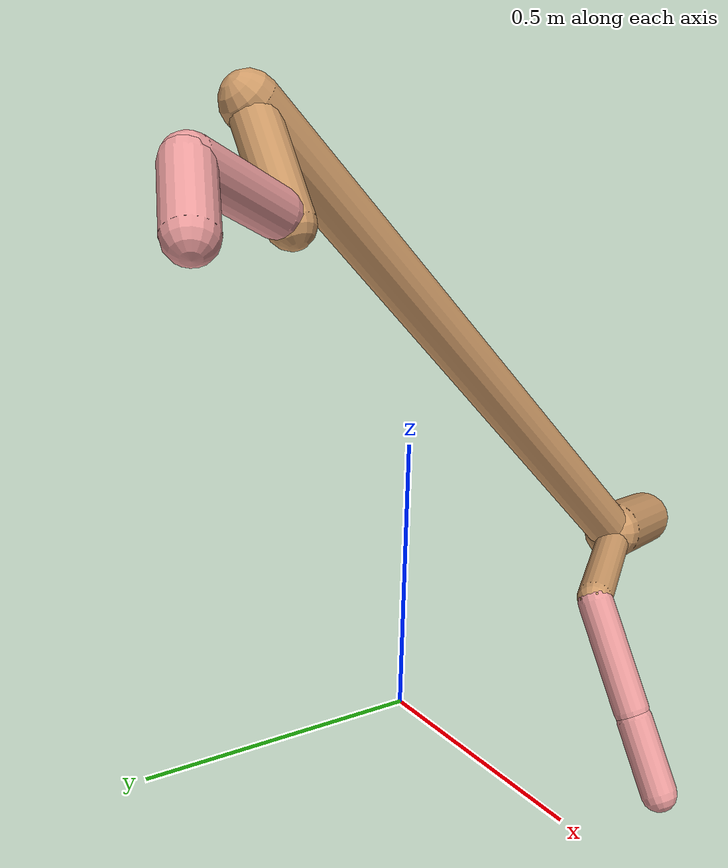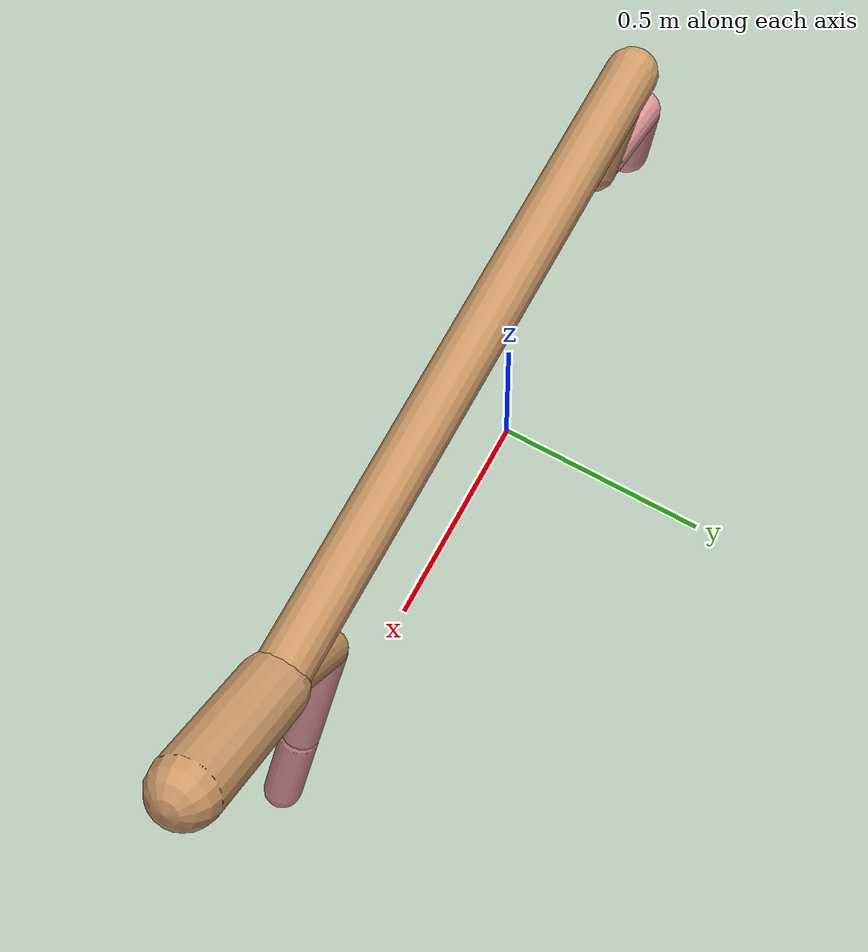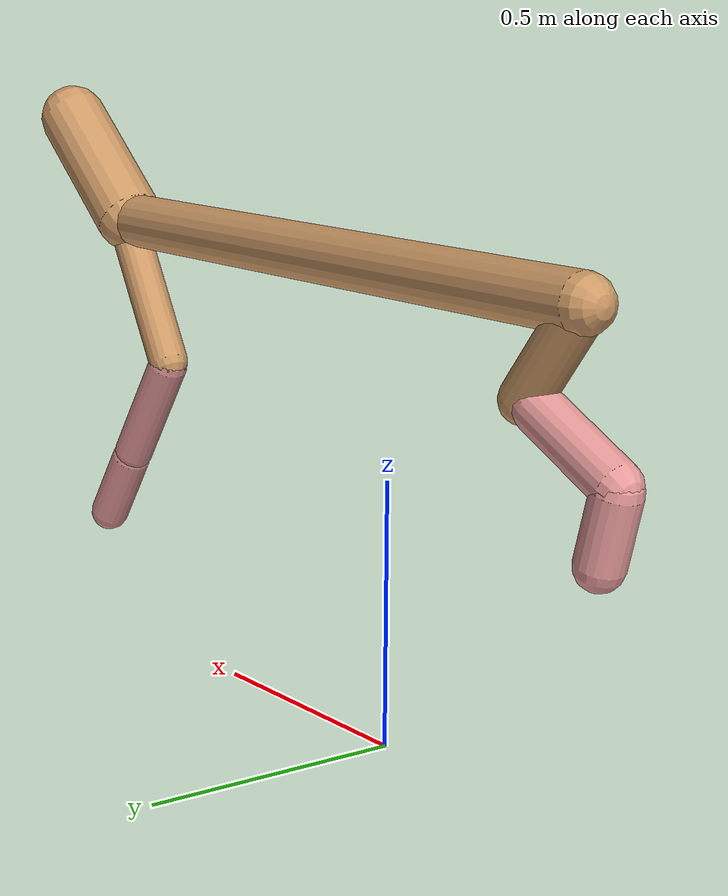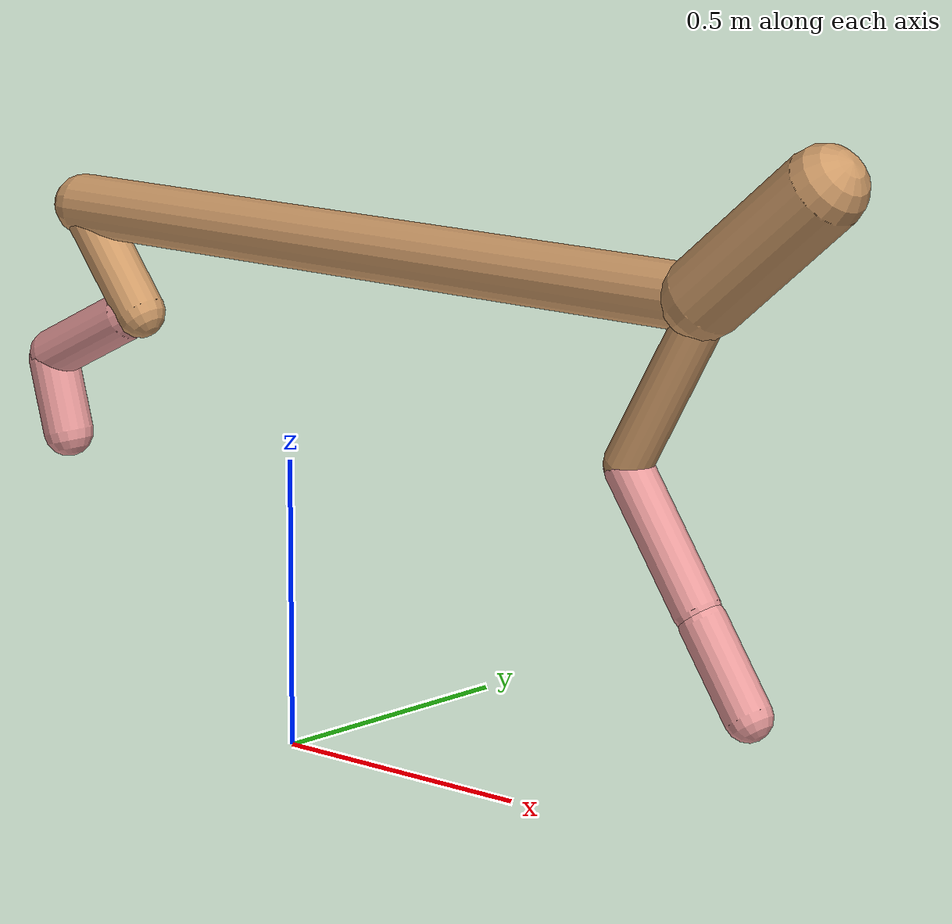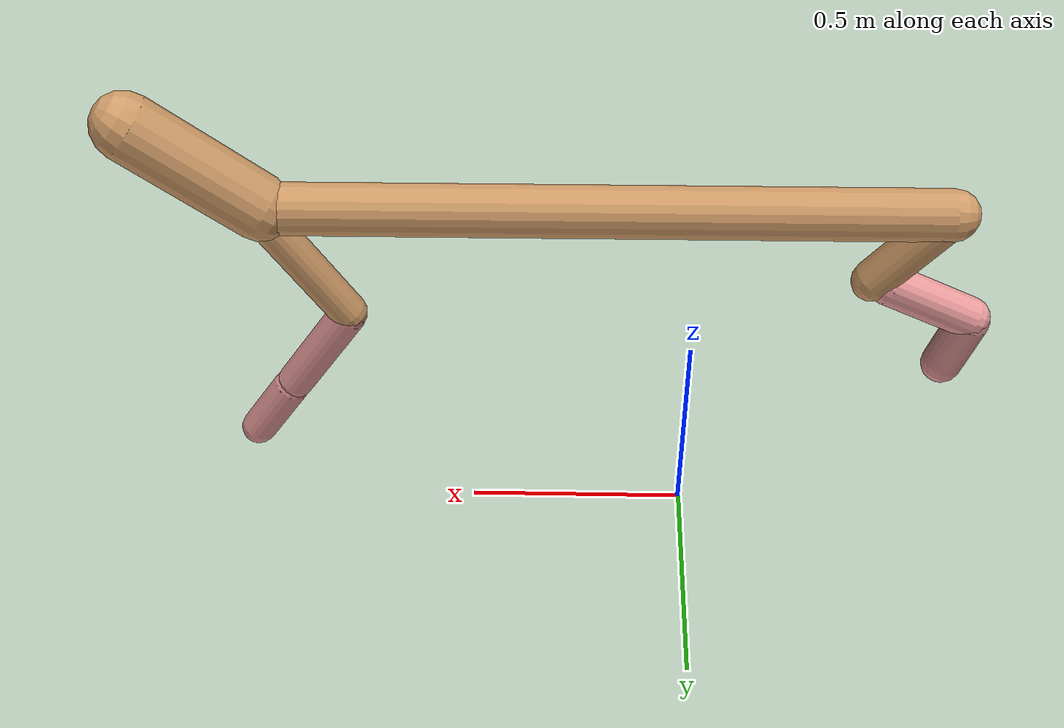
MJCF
<mujoco model="cheetah">
  <compiler angle="radian" coordinate="local" inertiafromgeom="true" settotalmass="14" />
  <default>
    <joint armature=".1" damping=".01" limited="true" solimplimit="0 .8 .03" solreflimit=".02 1" stiffness="8" />
    <geom conaffinity="0" condim="3" contype="1" friction="0.8 .1 .1" rgba="0.8 0.6 .4 1" solimp="0.0 0.8 0.01" solref="0.02 1" />
    <motor ctrllimited="true" ctrlrange="-1 1" />
  </default>
  <size nstack="300000" nuser_geom="1" />
  <option gravity="0 0 -9.81" timestep="0.01" />
  <worldbody>
    <body name="torso" pos="0.0 0.0 0.8859961388560085">
      <joint armature="0" axis="1 0 0" damping="0" limited="false" name="ignorex" pos="0 0 0" stiffness="0" type="slide" />
      <joint armature="0" axis="0 0 1" damping="0" limited="false" name="ignorez" pos="0 0 0" stiffness="0" type="slide" />
      <joint armature="0" axis="0 1 0" damping="0" limited="false" name="ignorey" pos="0 0 0" stiffness="0" type="hinge" />
      <geom fromto="-0.5 0.0 0.0 0.9042791474168028 0.0 0.0" name="torso" size="0.053931446585566936" type="capsule" />
      <geom axisangle="0 1 0 .87" name="head" pos="1.0042791474168027 0.0 0.1" size="0.06891285540641073 0.15" type="capsule" />

      <body name="bthigh" pos="-.5 0 0">
        <joint axis="0 1 0" damping="6" name="bthigh" pos="0 0 0" range="-.52 1.05" stiffness="240" type="hinge" />
        <geom axisangle="0 1 0 -3.8" name="bthigh" pos="0.0734775819030384 0.0 -0.0955208564739499" size="0.0446487315651676 0.10149999999999999" type="capsule" />
        <body name="bshin" pos="0.10695516380607678 0.0 -0.18104171294789978">
          <joint axis="0 1 0" damping="4.5" name="bshin" pos="0 0 0" range="-.785 .785" stiffness="180" type="hinge" />
          <geom axisangle="0 1 0 -2.03" name="bshin" pos="-0.0997507764050038 0.0 -0.0498753882025019" rgba="0.9 0.6 0.6 1" size="0.0446487315651676 0.105" type="capsule" />
          <body name="bfoot" pos="-0.1995015528100076 0.0 -0.0997507764050038">
            <joint axis="0 1 0" damping="3" name="bfoot" pos="0 0 0" range="-.4 .785" stiffness="120" type="hinge" />
            <geom axisangle="0 1 0 -.27" name="bfoot" pos="0.021667753813597694 0.0 -0.07005907066396588" rgba="0.9 0.6 0.6 1" size="0.0446487315651676 0.0658" type="capsule" />
            <inertial mass="10" />
          </body>
        </body>
      </body>
      <body name="fthigh" pos="0.9042791474168028 0.0 0.0">
        <joint axis="0 1 0" damping="4.5" name="fthigh" pos="0 0 0" range="-1.5 0.8" stiffness="180" type="hinge" />
        <geom axisangle="0 1 0 .52" name="fthigh" pos="-0.0830381827148989 0.0 -0.14235117036839812" size="0.03996546702227585 0.1588760318701351" type="capsule" />
        <body name="fshin" pos="-0.1660763654297978 0.0 -0.28470234073679623">
          <joint axis="0 1 0" damping="3" name="fshin" pos="0 0 0" range="-1.2 1.1" stiffness="120" type="hinge" />
          <geom axisangle="0 1 0 -.6" name="fshin" pos="0.0770745733569895 0.0 -0.10671864003275469" rgba="0.9 0.6 0.6 1" size="0.03996546702227585 0.12662300284386707" type="capsule" />
          <body name="ffoot" pos="0.154149146713979 0.0 -0.21343728006550938">
            <joint axis="0 1 0" damping="1.5" name="ffoot" pos="0 0 0" range="-3.1 -0.3" stiffness="60" type="hinge" />
            <geom axisangle="0 1 0 -.6" name="ffoot" pos="0.052364558245708195 0.0 -0.08145597949332387" rgba="0.9 0.6 0.6 1" size="0.03996546702227585 0.08361896414217637" type="capsule" />
            <inertial mass="10" />
          </body>
        </body>
      </body>
    </body>
  </worldbody>
  <actuator>
    <motor gear="120" joint="bthigh" name="bthigh" />
    <motor gear="90" joint="bshin" name="bshin" />
    <motor gear="60" joint="bfoot" name="bfoot" />
    <motor gear="120" joint="fthigh" name="fthigh" />
    <motor gear="60" joint="fshin" name="fshin" />
    <motor gear="30" joint="ffoot" name="ffoot" />
  </actuator>
</mujoco>
